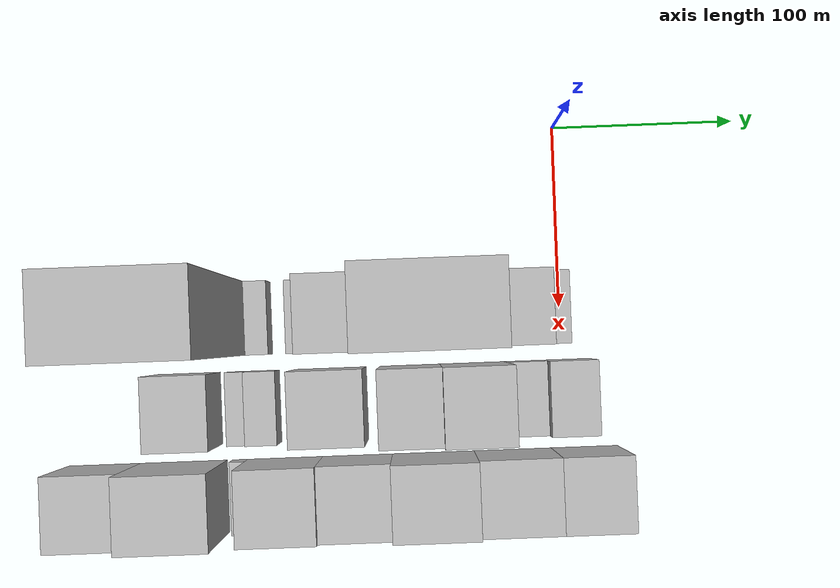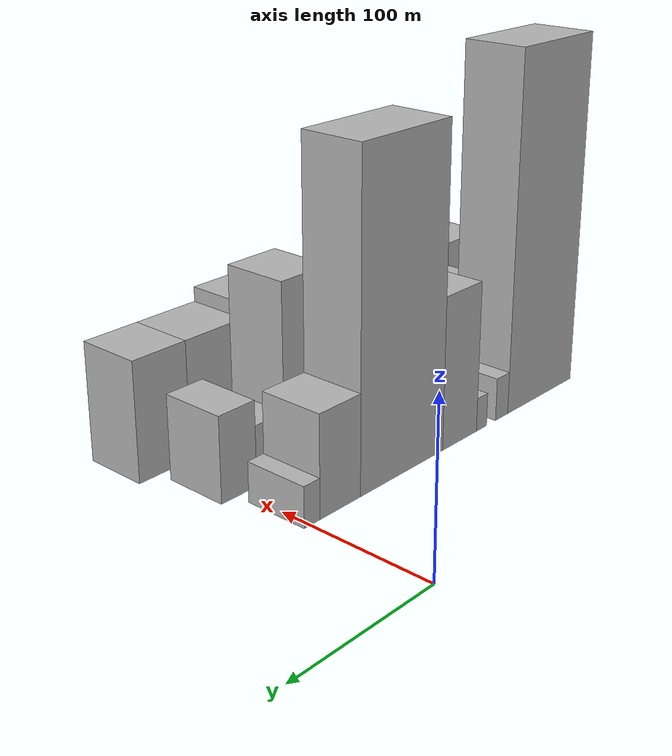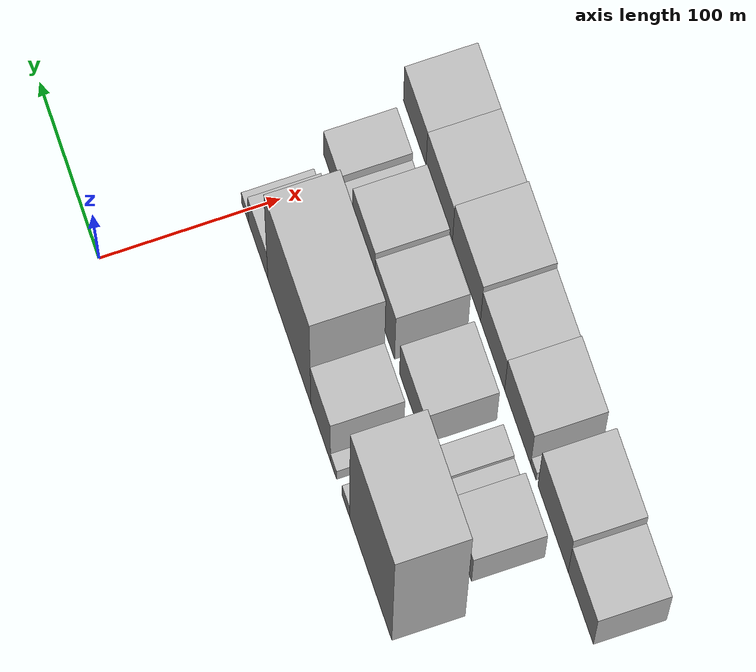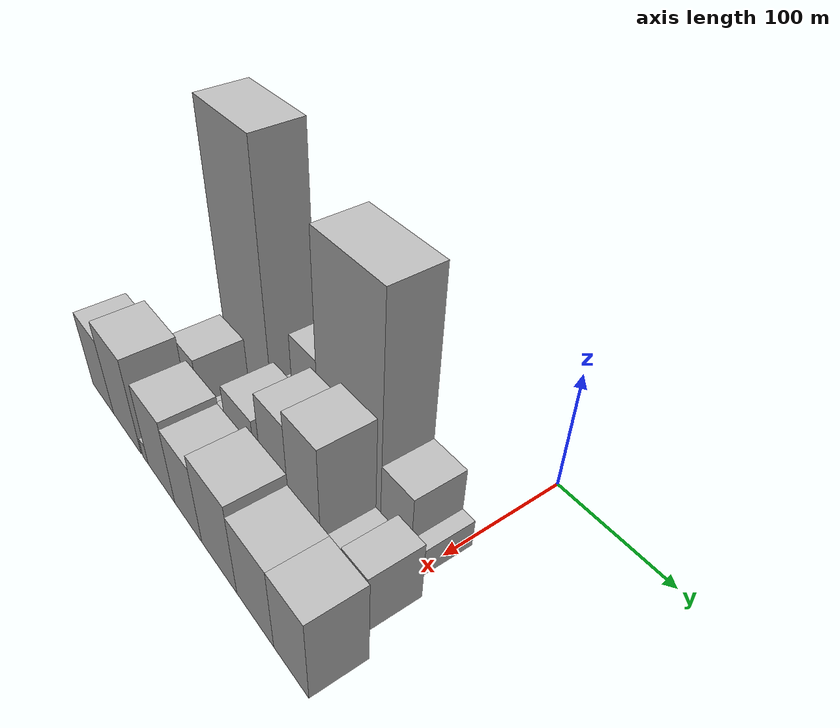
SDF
<sdf version="1.6">
 <world name="default">
  <model name="building_8">
   <static>1</static>
   <pose>100.0000 -206.6568 0 0.000000 0.000000 0.000000</pose>
   <link name="link">
    <pose>0 0 109.50 0 0 0</pose>
    <collision name="collision"><geometry><box><size>40.0000 68.0230 219.0000</size></box></geometry></collision>
    <visual name="visual">
     <cast_shadows>0</cast_shadows>
     <geometry><box><size>40.0000 68.0230 219.0000</size></box></geometry>
     <material>
      <script>
       <uri>model://HANNAS_wall/materials/scripts</uri>
       <uri>model://HANNAS_wall/materials/textures</uri>
       <name>vrc/HANNAS_wall</name>
      </script>
     </material>
    </visual>
   </link>
  </model>
  <model name="building_9">
   <static>1</static>
   <pose>100.0000 -166.4375 0 0.000000 0.000000 0.000000</pose>
   <link name="link">
    <pose>0 0 13.50 0 0 0</pose>
    <collision name="collision"><geometry><box><size>40.0000 12.4156 27.0000</size></box></geometry></collision>
    <visual name="visual">
     <cast_shadows>0</cast_shadows>
     <geometry><box><size>40.0000 12.4156 27.0000</size></box></geometry>
     <material>
      <script>
       <uri>model://HANNAS_wall/materials/scripts</uri>
       <uri>model://HANNAS_wall/materials/textures</uri>
       <name>vrc/HANNAS_wall</name>
      </script>
     </material>
    </visual>
   </link>
  </model>
  <model name="building_10">
   <static>1</static>
   <pose>100.0000 -146.2951 0 0.000000 0.000000 0.000000</pose>
   <link name="link">
    <pose>0 0 10.50 0 0 0</pose>
    <collision name="collision"><geometry><box><size>40.0000 9.8693 21.0000</size></box></geometry></collision>
    <visual name="visual">
     <cast_shadows>0</cast_shadows>
     <geometry><box><size>40.0000 9.8693 21.0000</size></box></geometry>
     <material>
      <script>
       <uri>model://HANNAS_wall/materials/scripts</uri>
       <uri>model://HANNAS_wall/materials/textures</uri>
       <name>vrc/HANNAS_wall</name>
      </script>
     </material>
    </visual>
   </link>
  </model>
  <model name="building_11">
   <static>1</static>
   <pose>100.0000 -125.3299 0 0.000000 0.000000 0.000000</pose>
   <link name="link">
    <pose>0 0 46.50 0 0 0</pose>
    <collision name="collision"><geometry><box><size>40.0000 32.0611 93.0000</size></box></geometry></collision>
    <visual name="visual">
     <cast_shadows>0</cast_shadows>
     <geometry><box><size>40.0000 32.0611 93.0000</size></box></geometry>
     <material>
      <script>
       <uri>model://HANNAS_wall/materials/scripts</uri>
       <uri>model://HANNAS_wall/materials/textures</uri>
       <name>vrc/HANNAS_wall</name>
      </script>
     </material>
    </visual>
   </link>
  </model>
  <model name="building_12">
   <static>1</static>
   <pose>100.0000 -74.0679 0 0.000000 0.000000 0.000000</pose>
   <link name="link">
    <pose>0 0 96.00 0 0 0</pose>
    <collision name="collision"><geometry><box><size>40.0000 70.4630 192.0000</size></box></geometry></collision>
    <visual name="visual">
     <cast_shadows>0</cast_shadows>
     <geometry><box><size>40.0000 70.4630 192.0000</size></box></geometry>
     <material>
      <script>
       <uri>model://HANNAS_wall/materials/scripts</uri>
       <uri>model://HANNAS_wall/materials/textures</uri>
       <name>vrc/HANNAS_wall</name>
      </script>
     </material>
    </visual>
   </link>
  </model>
  <model name="building_13">
   <static>1</static>
   <pose>100.0000 -23.1314 0 0.000000 0.000000 0.000000</pose>
   <link name="link">
    <pose>0 0 30.00 0 0 0</pose>
    <collision name="collision"><geometry><box><size>40.0000 31.4100 60.0000</size></box></geometry></collision>
    <visual name="visual">
     <cast_shadows>0</cast_shadows>
     <geometry><box><size>40.0000 31.4100 60.0000</size></box></geometry>
     <material>
      <script>
       <uri>model://HANNAS_wall/materials/scripts</uri>
       <uri>model://HANNAS_wall/materials/textures</uri>
       <name>vrc/HANNAS_wall</name>
      </script>
     </material>
    </visual>
   </link>
  </model>
  <model name="building_14">
   <static>1</static>
   <pose>100.0000 -1.5703 0 0.000000 0.000000 0.000000</pose>
   <link name="link">
    <pose>0 0 12.00 0 0 0</pose>
    <collision name="collision"><geometry><box><size>40.0000 11.7123 24.0000</size></box></geometry></collision>
    <visual name="visual">
     <cast_shadows>0</cast_shadows>
     <geometry><box><size>40.0000 11.7123 24.0000</size></box></geometry>
     <material>
      <script>
       <uri>model://HANNAS_wall/materials/scripts</uri>
       <uri>model://HANNAS_wall/materials/textures</uri>
       <name>vrc/HANNAS_wall</name>
      </script>
     </material>
    </visual>
   </link>
  </model>
  <model name="building_39">
   <static>1</static>
   <pose>149.0000 -207.1639 0 0.000000 0.000000 0.000000</pose>
   <link name="link">
    <pose>0 0 30.00 0 0 0</pose>
    <collision name="collision"><geometry><box><size>40.0000 34.6433 60.0000</size></box></geometry></collision>
    <visual name="visual">
     <cast_shadows>0</cast_shadows>
     <geometry><box><size>40.0000 34.6433 60.0000</size></box></geometry>
     <material>
      <script>
       <uri>model://HANNAS_wall/materials/scripts</uri>
       <uri>model://HANNAS_wall/materials/textures</uri>
       <name>vrc/HANNAS_wall</name>
      </script>
     </material>
    </visual>
   </link>
  </model>
  <model name="building_40">
   <static>1</static>
   <pose>149.0000 -179.5465 0 0.000000 0.000000 0.000000</pose>
   <link name="link">
    <pose>0 0 12.00 0 0 0</pose>
    <collision name="collision"><geometry><box><size>40.0000 10.5914 24.0000</size></box></geometry></collision>
    <visual name="visual">
     <cast_shadows>0</cast_shadows>
     <geometry><box><size>40.0000 10.5914 24.0000</size></box></geometry>
     <material>
      <script>
       <uri>model://HANNAS_wall/materials/scripts</uri>
       <uri>model://HANNAS_wall/materials/textures</uri>
       <name>vrc/HANNAS_wall</name>
      </script>
     </material>
    </visual>
   </link>
  </model>
  <model name="building_41">
   <static>1</static>
   <pose>149.0000 -165.5651 0 0.000000 0.000000 0.000000</pose>
   <link name="link">
    <pose>0 0 15.00 0 0 0</pose>
    <collision name="collision"><geometry><box><size>40.0000 17.3715 30.0000</size></box></geometry></collision>
    <visual name="visual">
     <cast_shadows>0</cast_shadows>
     <geometry><box><size>40.0000 17.3715 30.0000</size></box></geometry>
     <material>
      <script>
       <uri>model://HANNAS_wall/materials/scripts</uri>
       <uri>model://HANNAS_wall/materials/textures</uri>
       <name>vrc/HANNAS_wall</name>
      </script>
     </material>
    </visual>
   </link>
  </model>
  <model name="building_42">
   <static>1</static>
   <pose>149.0000 -128.1457 0 0.000000 0.000000 0.000000</pose>
   <link name="link">
    <pose>0 0 34.50 0 0 0</pose>
    <collision name="collision"><geometry><box><size>40.0000 39.4672 69.0000</size></box></geometry></collision>
    <visual name="visual">
     <cast_shadows>0</cast_shadows>
     <geometry><box><size>40.0000 39.4672 69.0000</size></box></geometry>
     <material>
      <script>
       <uri>model://HANNAS_wall/materials/scripts</uri>
       <uri>model://HANNAS_wall/materials/textures</uri>
       <name>vrc/HANNAS_wall</name>
      </script>
     </material>
    </visual>
   </link>
  </model>
  <model name="building_43">
   <static>1</static>
   <pose>149.0000 -84.0226 0 0.000000 0.000000 0.000000</pose>
   <link name="link">
    <pose>0 0 49.50 0 0 0</pose>
    <collision name="collision"><geometry><box><size>40.0000 32.7791 99.0000</size></box></geometry></collision>
    <visual name="visual">
     <cast_shadows>0</cast_shadows>
     <geometry><box><size>40.0000 32.7791 99.0000</size></box></geometry>
     <material>
      <script>
       <uri>model://HANNAS_wall/materials/scripts</uri>
       <uri>model://HANNAS_wall/materials/textures</uri>
       <name>vrc/HANNAS_wall</name>
      </script>
     </material>
    </visual>
   </link>
  </model>
  <model name="building_44">
   <static>1</static>
   <pose>149.0000 -49.7800 0 0.000000 0.000000 0.000000</pose>
   <link name="link">
    <pose>0 0 55.50 0 0 0</pose>
    <collision name="collision"><geometry><box><size>40.0000 35.7062 111.0000</size></box></geometry></collision>
    <visual name="visual">
     <cast_shadows>0</cast_shadows>
     <geometry><box><size>40.0000 35.7062 111.0000</size></box></geometry>
     <material>
      <script>
       <uri>model://HANNAS_wall/materials/scripts</uri>
       <uri>model://HANNAS_wall/materials/textures</uri>
       <name>vrc/HANNAS_wall</name>
      </script>
     </material>
    </visual>
   </link>
  </model>
  <model name="building_45">
   <static>1</static>
   <pose>149.0000 -21.1719 0 0.000000 0.000000 0.000000</pose>
   <link name="link">
    <pose>0 0 18.00 0 0 0</pose>
    <collision name="collision"><geometry><box><size>40.0000 21.5101 36.0000</size></box></geometry></collision>
    <visual name="visual">
     <cast_shadows>0</cast_shadows>
     <geometry><box><size>40.0000 21.5101 36.0000</size></box></geometry>
     <material>
      <script>
       <uri>model://HANNAS_wall/materials/scripts</uri>
       <uri>model://HANNAS_wall/materials/textures</uri>
       <name>vrc/HANNAS_wall</name>
      </script>
     </material>
    </visual>
   </link>
  </model>
  <model name="building_46">
   <static>1</static>
   <pose>149.0000 2.4567 0 0.000000 0.000000 0.000000</pose>
   <link name="link">
    <pose>0 0 25.50 0 0 0</pose>
    <collision name="collision"><geometry><box><size>40.0000 25.7470 51.0000</size></box></geometry></collision>
    <visual name="visual">
     <cast_shadows>0</cast_shadows>
     <geometry><box><size>40.0000 25.7470 51.0000</size></box></geometry>
     <material>
      <script>
       <uri>model://HANNAS_wall/materials/scripts</uri>
       <uri>model://HANNAS_wall/materials/textures</uri>
       <name>vrc/HANNAS_wall</name>
      </script>
     </material>
    </visual>
   </link>
  </model>
  <model name="building_68">
   <static>1</static>
   <pose>198.0000 -255.9049 0 0.000000 0.000000 0.000000</pose>
   <link name="link">
    <pose>0 0 34.50 0 0 0</pose>
    <collision name="collision"><geometry><box><size>40.0000 39.9409 69.0000</size></box></geometry></collision>
    <visual name="visual">
     <cast_shadows>0</cast_shadows>
     <geometry><box><size>40.0000 39.9409 69.0000</size></box></geometry>
     <material>
      <script>
       <uri>model://HANNAS_wall/materials/scripts</uri>
       <uri>model://HANNAS_wall/materials/textures</uri>
       <name>vrc/HANNAS_wall</name>
      </script>
     </material>
    </visual>
   </link>
  </model>
  <model name="building_69">
   <static>1</static>
   <pose>198.0000 -211.7833 0 0.000000 0.000000 0.000000</pose>
   <link name="link">
    <pose>0 0 43.50 0 0 0</pose>
    <collision name="collision"><geometry><box><size>40.0000 48.3024 87.0000</size></box></geometry></collision>
    <visual name="visual">
     <cast_shadows>0</cast_shadows>
     <geometry><box><size>40.0000 48.3024 87.0000</size></box></geometry>
     <material>
      <script>
       <uri>model://HANNAS_wall/materials/scripts</uri>
       <uri>model://HANNAS_wall/materials/textures</uri>
       <name>vrc/HANNAS_wall</name>
      </script>
     </material>
    </visual>
   </link>
  </model>
  <model name="building_70">
   <static>1</static>
   <pose>198.0000 -180.3781 0 0.000000 0.000000 0.000000</pose>
   <link name="link">
    <pose>0 0 9.00 0 0 0</pose>
    <collision name="collision"><geometry><box><size>40.0000 8.5079 18.0000</size></box></geometry></collision>
    <visual name="visual">
     <cast_shadows>0</cast_shadows>
     <geometry><box><size>40.0000 8.5079 18.0000</size></box></geometry>
     <material>
      <script>
       <uri>model://HANNAS_wall/materials/scripts</uri>
       <uri>model://HANNAS_wall/materials/textures</uri>
       <name>vrc/HANNAS_wall</name>
      </script>
     </material>
    </visual>
   </link>
  </model>
  <model name="building_71">
   <static>1</static>
   <pose>198.0000 -155.2346 0 0.000000 0.000000 0.000000</pose>
   <link name="link">
    <pose>0 0 37.50 0 0 0</pose>
    <collision name="collision"><geometry><box><size>40.0000 41.7790 75.0000</size></box></geometry></collision>
    <visual name="visual">
     <cast_shadows>0</cast_shadows>
     <geometry><box><size>40.0000 41.7790 75.0000</size></box></geometry>
     <material>
      <script>
       <uri>model://HANNAS_wall/materials/scripts</uri>
       <uri>model://HANNAS_wall/materials/textures</uri>
       <name>vrc/HANNAS_wall</name>
      </script>
     </material>
    </visual>
   </link>
  </model>
  <model name="building_72">
   <static>1</static>
   <pose>198.0000 -114.9320 0 0.000000 0.000000 0.000000</pose>
   <link name="link">
    <pose>0 0 34.50 0 0 0</pose>
    <collision name="collision"><geometry><box><size>40.0000 38.8261 69.0000</size></box></geometry></collision>
    <visual name="visual">
     <cast_shadows>0</cast_shadows>
     <geometry><box><size>40.0000 38.8261 69.0000</size></box></geometry>
     <material>
      <script>
       <uri>model://HANNAS_wall/materials/scripts</uri>
       <uri>model://HANNAS_wall/materials/textures</uri>
       <name>vrc/HANNAS_wall</name>
      </script>
     </material>
    </visual>
   </link>
  </model>
  <model name="building_73">
   <static>1</static>
   <pose>198.0000 -72.8679 0 0.000000 0.000000 0.000000</pose>
   <link name="link">
    <pose>0 0 40.50 0 0 0</pose>
    <collision name="collision"><geometry><box><size>40.0000 45.3021 81.0000</size></box></geometry></collision>
    <visual name="visual">
     <cast_shadows>0</cast_shadows>
     <geometry><box><size>40.0000 45.3021 81.0000</size></box></geometry>
     <material>
      <script>
       <uri>model://HANNAS_wall/materials/scripts</uri>
       <uri>model://HANNAS_wall/materials/textures</uri>
       <name>vrc/HANNAS_wall</name>
      </script>
     </material>
    </visual>
   </link>
  </model>
  <model name="building_74">
   <static>1</static>
   <pose>198.0000 -28.7360 0 0.000000 0.000000 0.000000</pose>
   <link name="link">
    <pose>0 0 36.00 0 0 0</pose>
    <collision name="collision"><geometry><box><size>40.0000 42.9617 72.0000</size></box></geometry></collision>
    <visual name="visual">
     <cast_shadows>0</cast_shadows>
     <geometry><box><size>40.0000 42.9617 72.0000</size></box></geometry>
     <material>
      <script>
       <uri>model://HANNAS_wall/materials/scripts</uri>
       <uri>model://HANNAS_wall/materials/textures</uri>
       <name>vrc/HANNAS_wall</name>
      </script>
     </material>
    </visual>
   </link>
  </model>
  <model name="building_75">
   <static>1</static>
   <pose>198.0000 11.1851 0 0.000000 0.000000 0.000000</pose>
   <link name="link">
    <pose>0 0 36.00 0 0 0</pose>
    <collision name="collision"><geometry><box><size>40.0000 36.8806 72.0000</size></box></geometry></collision>
    <visual name="visual">
     <cast_shadows>0</cast_shadows>
     <geometry><box><size>40.0000 36.8806 72.0000</size></box></geometry>
     <material>
      <script>
       <uri>model://HANNAS_wall/materials/scripts</uri>
       <uri>model://HANNAS_wall/materials/textures</uri>
       <name>vrc/HANNAS_wall</name>
      </script>
     </material>
    </visual>
   </link>
  </model>
 </world>
</sdf>
